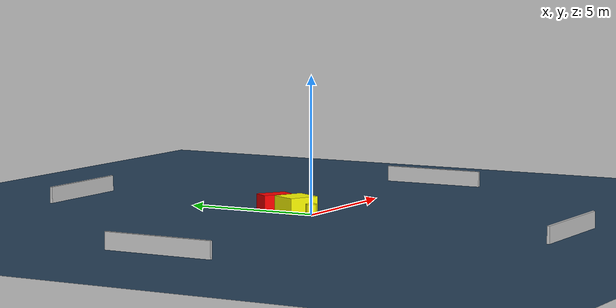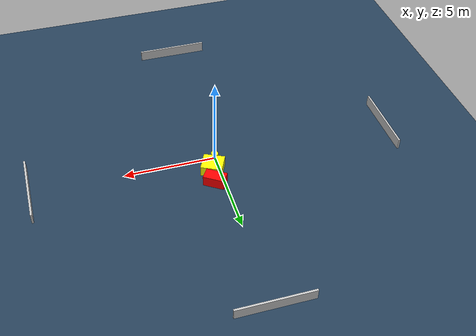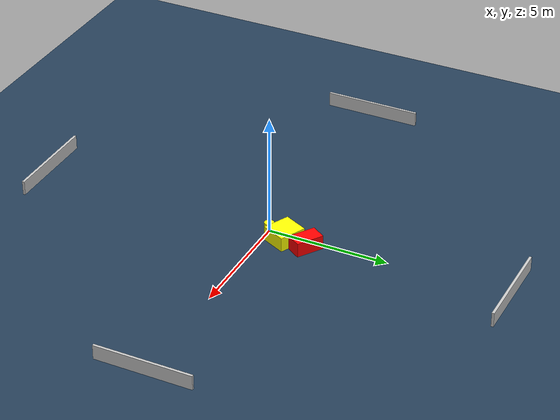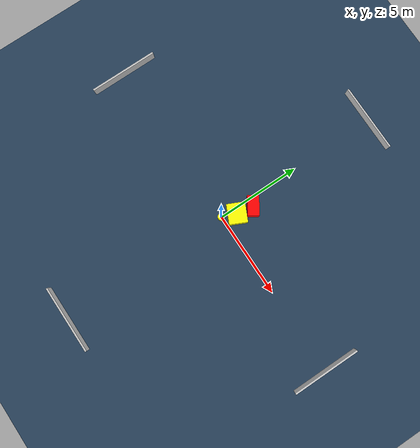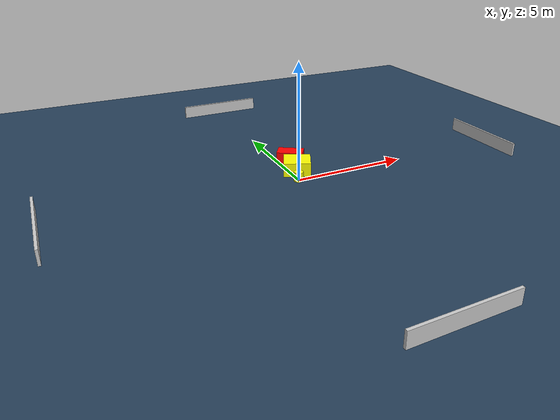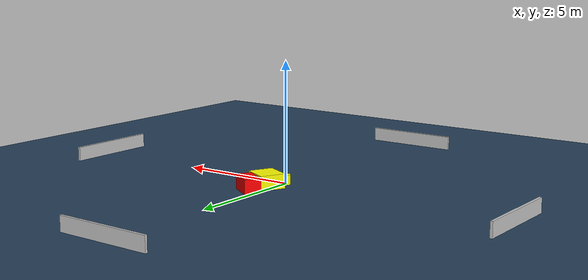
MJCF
<?xml version="1.0" ?>
<mujoco model="generated_environment">
  <option timestep="0.01" integrator="RK4" cone="elliptic"/>
  <default>
    <geom density="1"/>
  </default>
  <asset>
    <texture builtin="gradient" height="3072" name="skybox" rgb1="0.3 0.5 0.7" rgb2="0 0 0" type="skybox" width="512"/>
    <texture builtin="checker" height="300" name="groundplane" rgb1="0.2 0.3 0.4" rgb2="0.1 0.2 0.3" type="2d" width="300"/>
    <material name="groundplane" reflectance="0.2" texrepeat="5 5" texture="groundplane"/>
  </asset>
  <worldbody>
    <light dir="0 0 -1" directional="true" pos="0 0 1.5"/>
    <geom condim="3" friction="0.5 0.005 0.001" material="groundplane" name="floor" pos="0 0 0" size="0 0 0.05" type="plane"/>
    <body name="walls">
      <geom name="wall_1" condim="4" pos="-10.0 0.0 0.3" rgba="0.800000011920929 0.800000011920929 0.800000011920929 1.0" size="0.05 2.0 0.3" type="box"/>
      <geom name="wall_2" condim="4" pos="10.0 0.0 0.3" rgba="0.800000011920929 0.800000011920929 0.800000011920929 1.0" size="0.05 2.0 0.3" type="box"/>
      <geom name="wall_3" condim="4" pos="0.0 -10.0 0.3" rgba="0.800000011920929 0.800000011920929 0.800000011920929 1.0" size="2.0 0.05 0.3" type="box"/>
      <geom name="wall_4" condim="4" pos="0.0 10.0 0.3" rgba="0.800000011920929 0.800000011920929 0.800000011920929 1.0" size="2.0 0.05 0.3" type="box"/>
    </body>
    <body name="robot">
      <joint name="joint_x" type="slide" pos="0 0 0" axis="1 0 0"/>
      <joint name="joint_y" type="slide" pos="0 0 0" axis="0 1 0"/>
      <geom name="robot" type="cylinder" pos="0.0 0.0 0.2" size="0.2 0.2 0.0" mass="5.0" friction="1.0 0.005 0.0001" condim="4" rgba="1.0 1.0 0.0 1.0"/>
    </body>
    <body name="obstacle_1_movable">
      <geom name="obstacle_1_movable" condim="4" pos="0.33624132549627384 0.8210064835801114 0.3" euler="0 0 64.45121260323839" friction="0.0 0.005 0.001" rgba="1.0 1.0 0.0 1.0" size="0.5285580469440847 0.5752683346428008 0.3" type="box" mass="0.1"/>
      <joint type="free"/>
    </body>
    <body name="obstacle_2_static">
      <geom name="obstacle_2_static" condim="4" pos="0.48462732378671186 1.8040695162331062 0.3" euler="0 0 326.69968990506067" friction="0.0 0.005 0.001" rgba="1.0 0.0 0.0 1.0" size="0.5740786951436123 0.33016496769777975 0.3" type="box"/>
    </body>
  </worldbody>
  <actuator>
    <motor name="actuator_x" joint="joint_x" gear="1" ctrlrange="-1 1"/>
    <motor name="actuator_y" joint="joint_y" gear="1" ctrlrange="-1 1"/>
  </actuator>
</mujoco>
